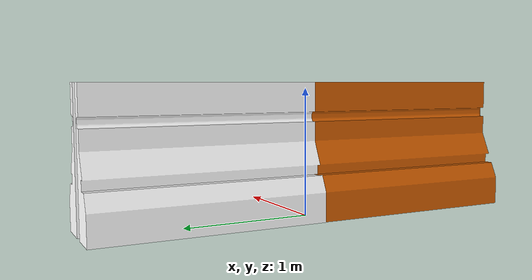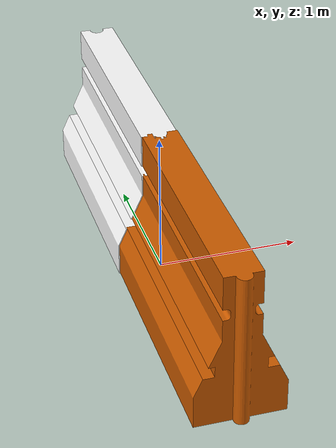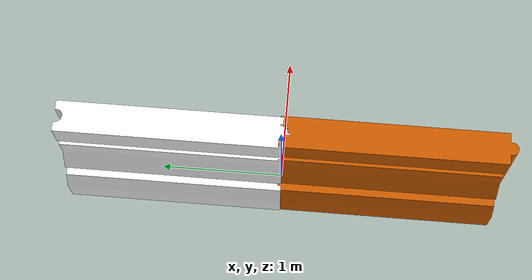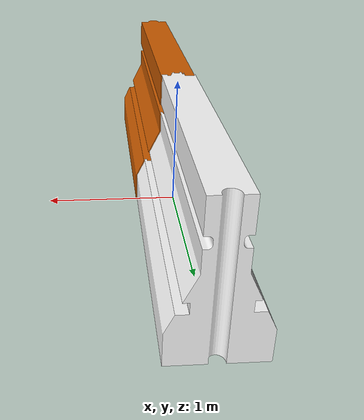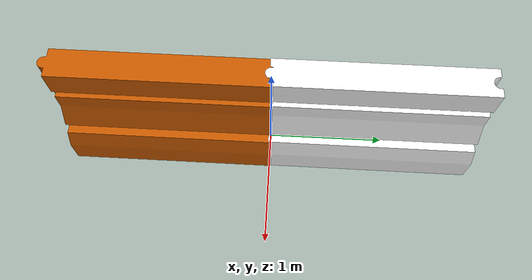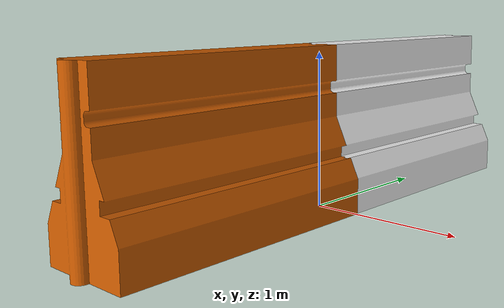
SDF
<?xml version='1.0'?>
<sdf version='1.6'>
  <model name='2double_barrier'>
    <model name='drc_practice_white_jersey_barrier'>
      <static>1</static>
      <link name='link'>
        <visual name='visual'>
          <geometry>
            <mesh>
              <uri>model://drc_practice_white_jersey_barrier/meshes/jersey_barrier.dae</uri>
            </mesh>
          </geometry>
        </visual>
        <collision name='collision'>
          <geometry>
            <mesh>
              <uri>model://drc_practice_white_jersey_barrier/meshes/jersey_barrier.dae</uri>
            </mesh>
          </geometry>
        </collision>
      </link>
      <pose frame=''>0.000174 0.855874 0 0 -0 0</pose>
    </model>
    <model name='drc_practice_white_jersey_barrier_orange3'>
      <link name='link'>
        <self_collide>0</self_collide>
        <enable_wind>0</enable_wind>
        <kinematic>0</kinematic>
        <pose frame=''>0 0 0 0 -0 0</pose>
        <gravity>1</gravity>
        <inertial>
          <mass>1</mass>
          <pose frame=''>0 0 0 0 -0 0</pose>
          <inertia>
            <ixx>1</ixx>
            <ixy>0</ixy>
            <ixz>0</ixz>
            <iyy>1</iyy>
            <iyz>0</iyz>
            <izz>1</izz>
          </inertia>
        </inertial>
        <visual name='visual'>
          <geometry>
            <mesh>
              <uri>model://drc_practice_white_jersey_barrier/meshes/jersey_barrier.dae</uri>
            </mesh>
          </geometry>
          <pose frame=''>0 0 0 0 -0 0</pose>
          <transparency>0</transparency>
          <cast_shadows>1</cast_shadows>
          <material>
            <script>
              <name>ModelPreview_1::link::visual_MATERIAL_</name>
              <uri>__default__</uri>
            </script>
            <ambient>0.808 0.361 0 1</ambient>
            <shader type='vertex'>
              <normal_map>__default__</normal_map>
            </shader>
            <diffuse>0.808 0.361 0 1</diffuse>
            <specular>0.808 0.361 0 1</specular>
            <emissive>0.561 0.349 0.008 1</emissive>
          </material>
        </visual>
        <collision name='collision'>
          <laser_retro>0</laser_retro>
          <max_contacts>10</max_contacts>
          <pose frame=''>0 0 0 0 -0 0</pose>
          <geometry>
            <mesh>
              <uri>/home/beyz/.gazebo/gazebo_models/drc_practice_white_jersey_barrier/meshes/jersey_barrier.dae</uri>
              <scale>1 1 1</scale>
            </mesh>
          </geometry>
          <surface>
            <friction>
              <ode>
                <mu>1</mu>
                <mu2>1</mu2>
                <fdir1>0 0 0</fdir1>
                <slip1>0</slip1>
                <slip2>0</slip2>
              </ode>
              <torsional>
                <coefficient>1</coefficient>
                <patch_radius>0</patch_radius>
                <surface_radius>0</surface_radius>
                <use_patch_radius>1</use_patch_radius>
                <ode>
                  <slip>0</slip>
                </ode>
              </torsional>
            </friction>
            <bounce>
              <restitution_coefficient>0</restitution_coefficient>
              <threshold>1e+06</threshold>
            </bounce>
            <contact>
              <collide_without_contact>0</collide_without_contact>
              <collide_without_contact_bitmask>1</collide_without_contact_bitmask>
              <collide_bitmask>1</collide_bitmask>
              <ode>
                <soft_cfm>0</soft_cfm>
                <soft_erp>0.2</soft_erp>
                <kp>1e+13</kp>
                <kd>1</kd>
                <max_vel>0.01</max_vel>
                <min_depth>0</min_depth>
              </ode>
              <bullet>
                <split_impulse>1</split_impulse>
                <split_impulse_penetration_threshold>-0.01</split_impulse_penetration_threshold>
                <soft_cfm>0</soft_cfm>
                <soft_erp>0.2</soft_erp>
                <kp>1e+13</kp>
                <kd>1</kd>
              </bullet>
            </contact>
          </surface>
        </collision>
      </link>
      <static>1</static>
      <allow_auto_disable>1</allow_auto_disable>
      <pose frame=''>-0.000174 -0.855876 0 0 -0 0</pose>
    </model>
    <static>0</static>
    <allow_auto_disable>1</allow_auto_disable>
  </model>
</sdf>
